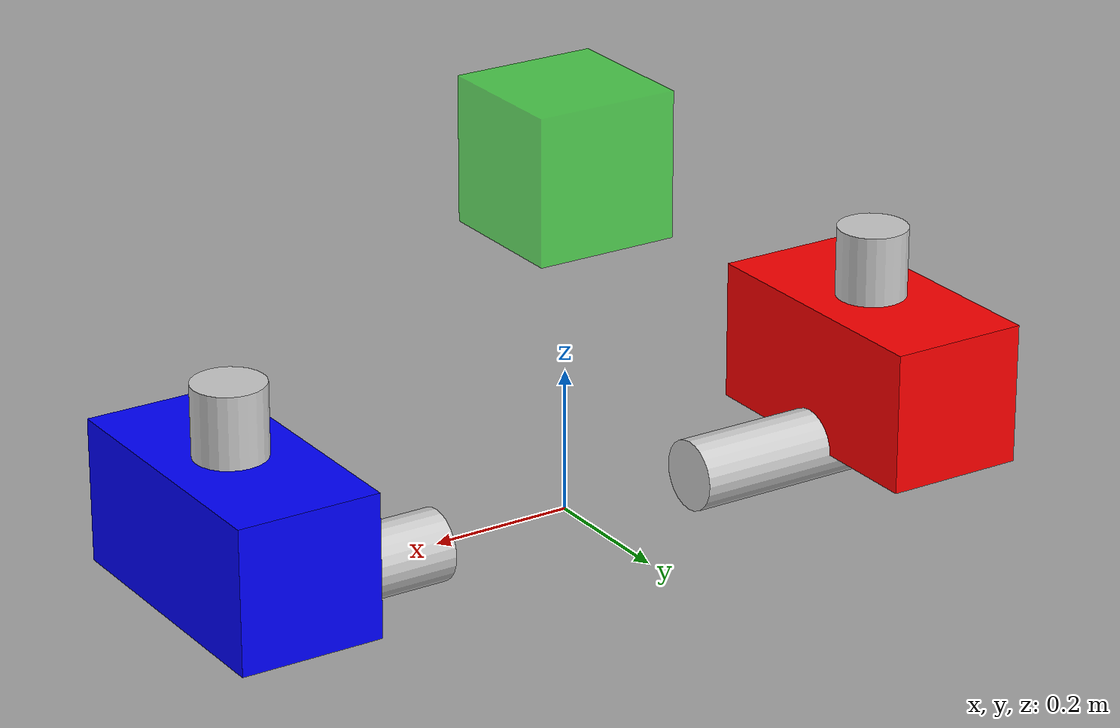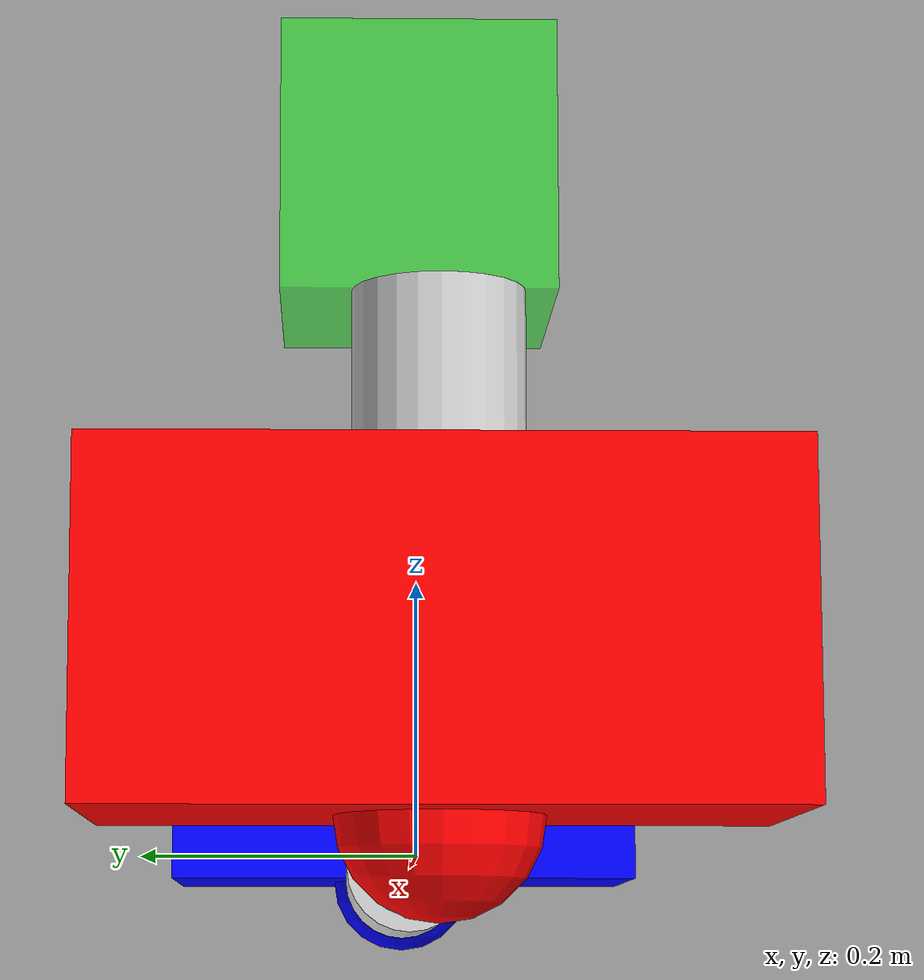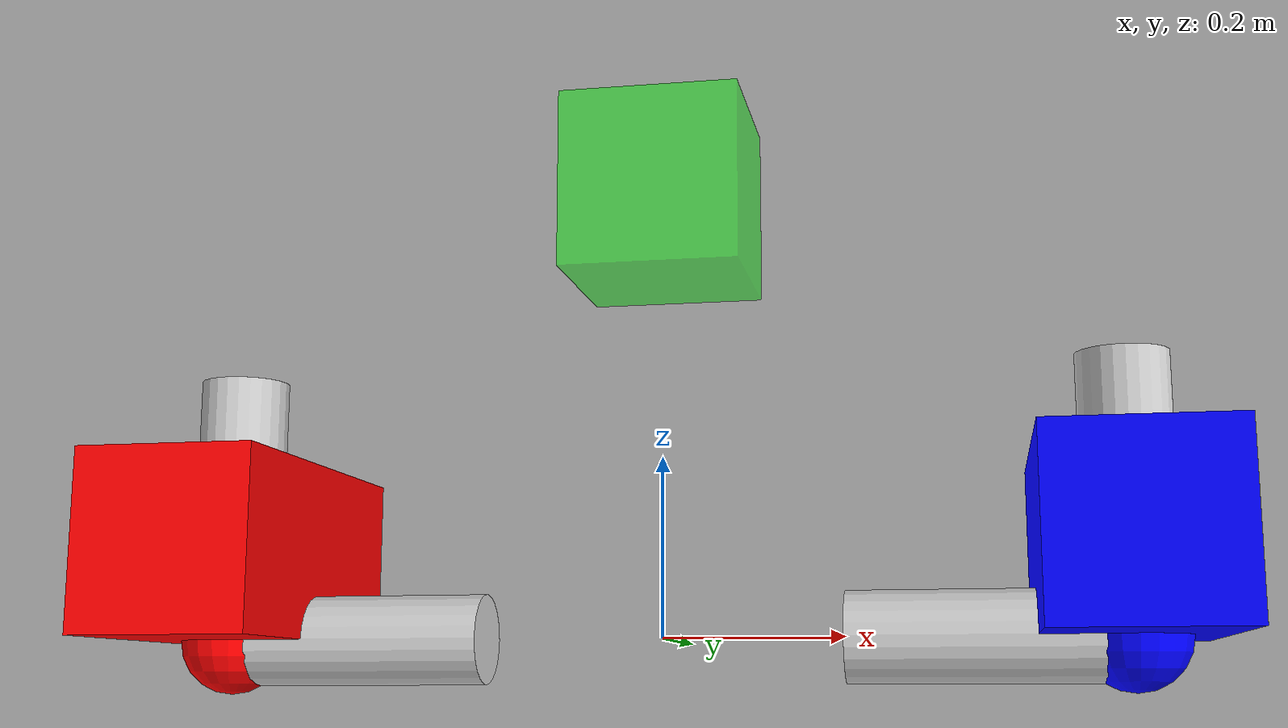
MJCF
<mujoco>
  <option timestep="0.001">
    <gravity>0 0 0</gravity>  <!-- 禁用重力 -->
  </option>

  <worldbody>
    <!-- 基座1和左机械臂 -->
    <body name="base_left" pos="-0.5 0 0">
      <joint type="free"/>
      <geom type="box" size="0.1 0.2 0.1" pos="0 0 0.1" rgba="1 0 0 1"/>

      <!-- 左臂连杆结构 -->
      <body name="link1_left">
        <joint name="joint1_left" type="hinge" axis="0 0 1" range="-180 180"/>
        <geom type="cylinder" size="0.05" fromto="0 0 0 0.3 0 0" rgba="0.8 0.8 0.8 1"/>

        <body name="link2_left">
          <joint name="joint2_left" type="hinge" axis="0 1 0" range="-90 90"/>
          <geom type="cylinder" size="0.05" fromto="0 0 0 0 0 0.3" rgba="0.8 0.8 0.8 1"/>

          <body name="ee_left">
            <geom type="sphere" size="0.06" rgba="1 0 0 1"/>
          </body>
        </body>
      </body>
    </body>

    <!-- 基座2和右机械臂 -->
    <body name="base_right" pos="0.5 0 0">
      <geom type="box" size="0.1 0.2 0.1" pos="0 0 0.1" rgba="0 0 1 1"/>

      <body name="link1_right">
        <joint name="joint1_right" type="hinge" axis="0 0 1" range="-180 180"/>
        <geom type="cylinder" size="0.05" fromto="0 0 0 -0.3 0 0" rgba="0.8 0.8 0.8 1"/>

        <body name="link2_right">
          <joint name="joint2_right" type="hinge" axis="0 1 0" range="-90 90"/>
          <geom type="cylinder" size="0.05" fromto="0 0 0 0 0 0.3" rgba="0.8 0.8 0.8 1"/>

          <body name="ee_right">
            <geom type="sphere" size="0.06" rgba="0 0 1 1"/>
          </body>
        </body>
      </body>
    </body>

    <!-- 目标物体 -->
    <body name="target" pos="0 0 0.5">
      <geom type="box" size="0.1 0.1 0.1" rgba="0 1 0 0.5"/>
    </body>
  </worldbody>

  <actuator>
    <motor joint="joint1_left" gear="200"/>
    <motor joint="joint2_left" gear="200"/>
    <motor joint="joint1_right" gear="200"/>
    <motor joint="joint2_right" gear="200"/>
  </actuator>
</mujoco>
